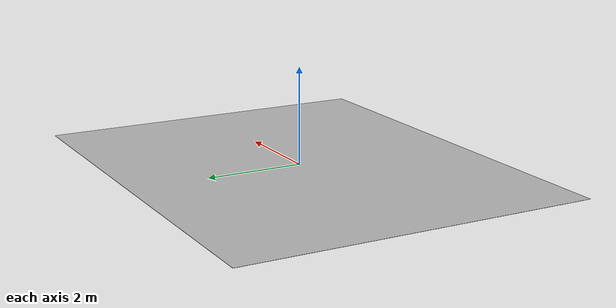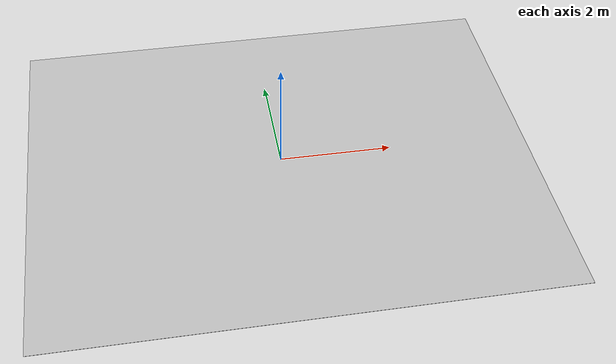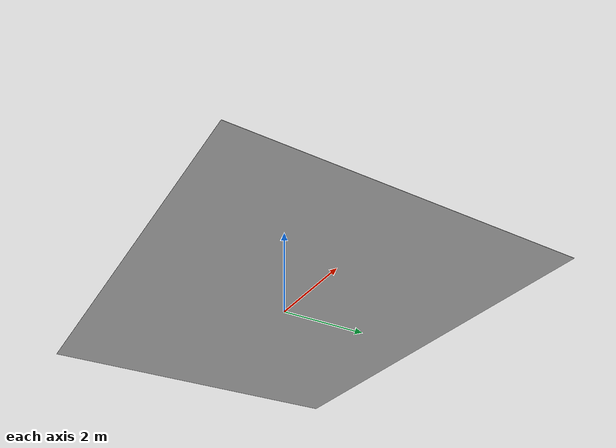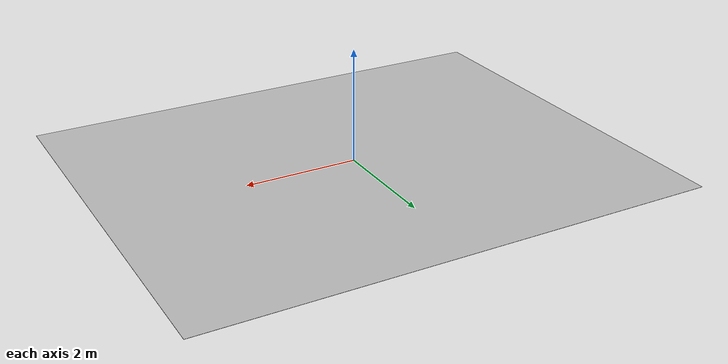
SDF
<?xml version='1.0'?>
<sdf version='1.6'>
  <model name='room_floor'>
    <static>true</static>
    <link name="link">
      <visual name="visual">
        <cast_shadows>false</cast_shadows>
        <geometry>
          <box>
            <size>9 7.25 0.005</size>
          </box>
        </geometry>
        <material>
          <script>
            <uri>model://room_floor/materials/scripts</uri>
            <uri>model://room_floor/materials/textures</uri>
            <name>room_floor/Terrazzo</name>
          </script>
        </material>
      </visual>
    </link>
  </model>
</sdf>
